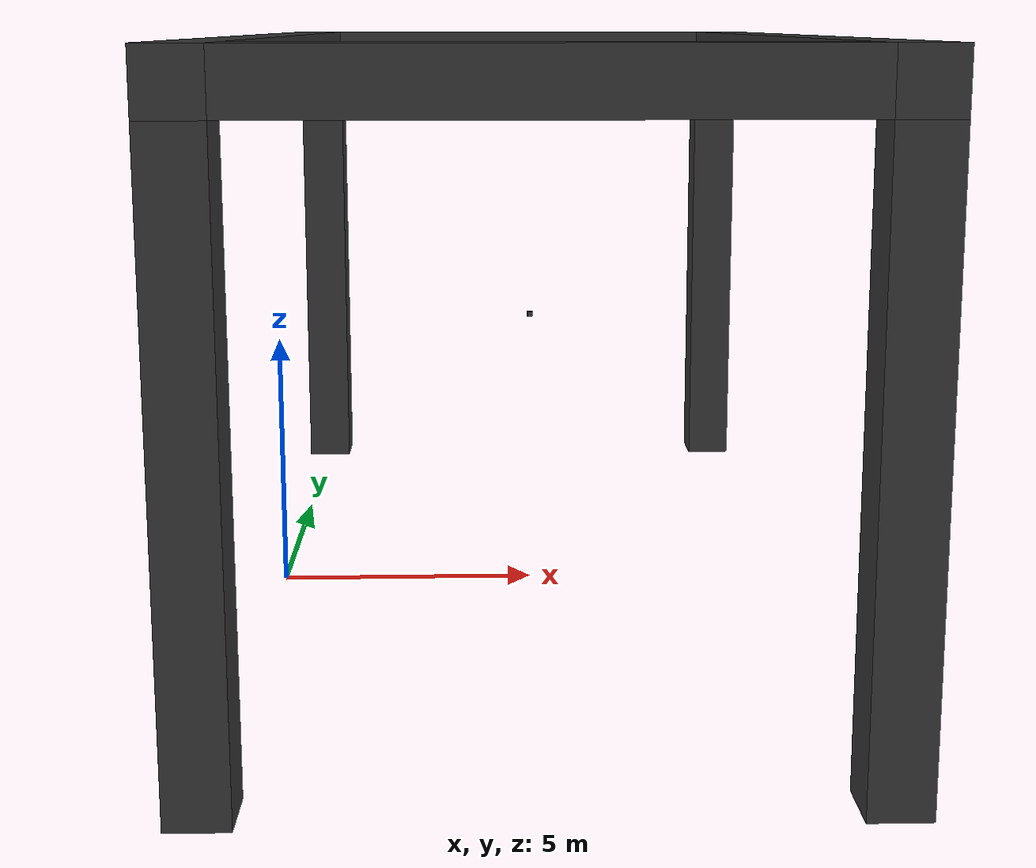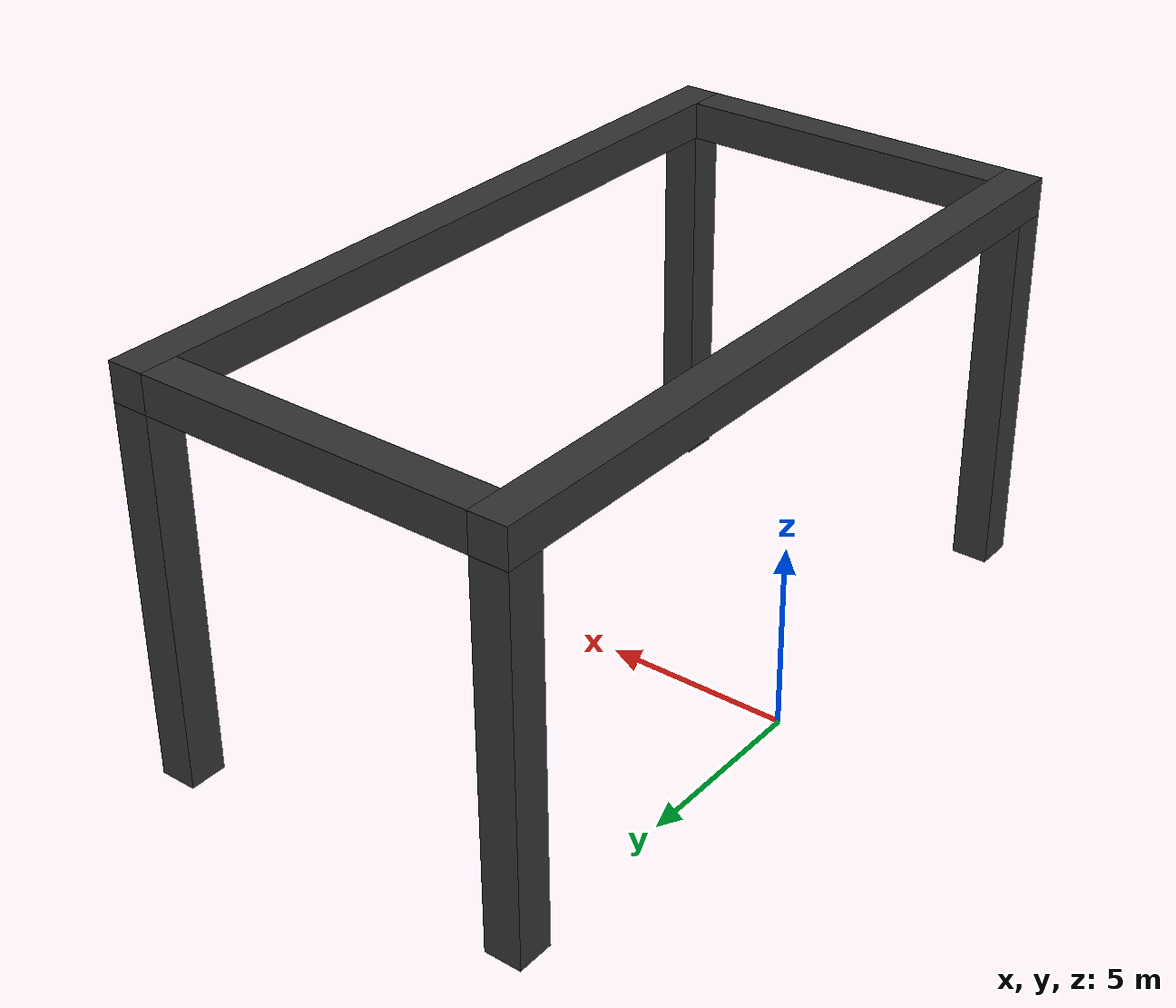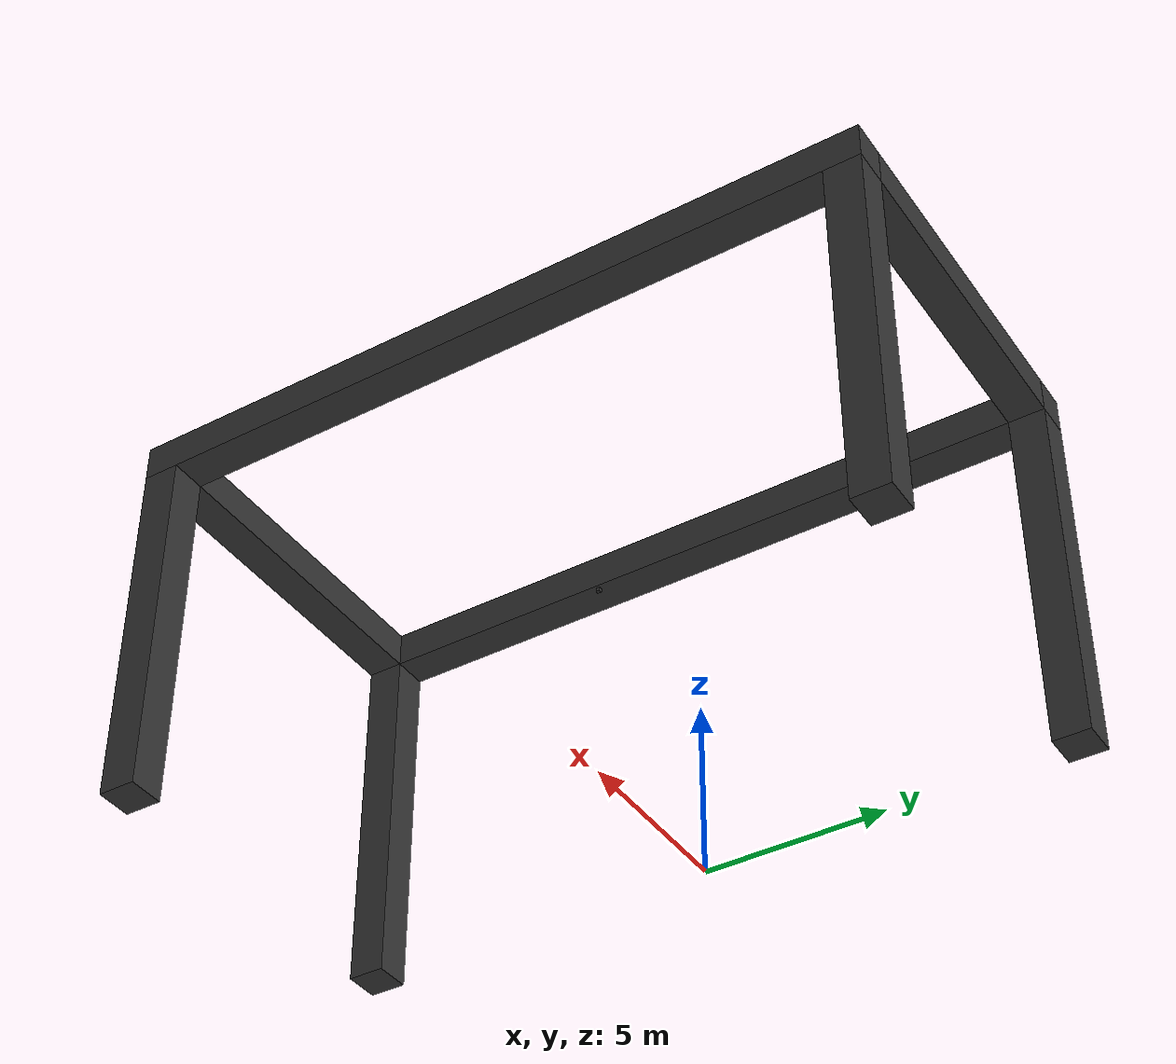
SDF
<?xml version="1.0"?>
<sdf version="1.8">
  <model name="kopnyc">
  <static>true</static>
  <!-- колоны -->
  <include>
    <uri>/home/valerii/proect_manipulator/src/gazebo/worlds/kolona/kolona.sdf</uri>
    <name>kolona1</name>
    <pose>10 10 5 0 0 0</pose>
  </include>
  <include>
    <uri>/home/valerii/proect_manipulator/src/gazebo/worlds/kolona/kolona.sdf</uri>
    <pose>0 10 5 0 0 0</pose>
    <name>kolona2</name>
  </include>
  <include>
    <uri>/home/valerii/proect_manipulator/src/gazebo/worlds/kolona/kolona.sdf</uri>
    <pose>10 -10 5 0 0 0</pose>
    <name>kolona3</name>
  </include>
  <include>
    <uri>/home/valerii/proect_manipulator/src/gazebo/worlds/kolona/kolona.sdf</uri>
    <pose>0 -10 5 0 0 0</pose>
    <name>kolona4</name>
  </include>
  <!-- балки -->
  <include>
    <uri>/home/valerii/proect_manipulator/src/gazebo/worlds/balka/balka.sdf</uri>
    <pose>10 0 10.5 0 0 0</pose>
    <name>balka1</name>
  </include>
  <include>
    <uri>/home/valerii/proect_manipulator/src/gazebo/worlds/balka/balka.sdf</uri>
    <pose>0 0 10.5 0 0 0</pose>
    <name>balka2</name>
  </include>
  <include>
    <uri>/home/valerii/proect_manipulator/src/gazebo/worlds/balka2/balka2.sdf</uri>
    <pose>5 10 10.5 0 0 0</pose>
    <name>balka3</name>
  </include>
  <include>
    <uri>/home/valerii/proect_manipulator/src/gazebo/worlds/balka2/balka2.sdf</uri>
    <pose>5 -10 10.5 0 0 0</pose>
    <name>balka4</name>
  </include>
  <!-- камера  -->
  <include>
    <uri>/home/valerii/proect_manipulator/src/gazebo/worlds/camera/camera.sdf</uri>
    <name>camera1</name>
    <pose>5 0 5.5 0 1.5708 0</pose>
  </include>
  <joint name="shtativ" type="fixed">
    <parent>camera1::kopnyc</parent>
    <child>kolona1::kolona</child>
  </joint>
  </model>
</sdf>

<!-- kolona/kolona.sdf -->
<sdf version="1.8">
  <model name="kolona">
  <pose>0 0 0 0 0 0</pose>
    <link name="kolona">

      <collision name="collision">
        <geometry>
          <box>
            <size>1 1 10</size>
          </box>
        </geometry>
      </collision>
      <visual name="visual">
        <geometry>
          <box>
            <size>1 1 10</size>
          </box>
        </geometry>
        <material>
          <ambient>0.2 0.2 0.2 1</ambient>
          <diffuse>0.2 0.2 0.2 1</diffuse>
        </material>
      </visual>
    </link>
  </model>
</sdf>

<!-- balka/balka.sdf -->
<sdf version="1.8">
  <model name="balka">
    <static>true</static>
    <link name="balka">
      <pose>0 0 0 0 0 0</pose>
      <collision name="collision">
        <geometry>
          <box>
            <size>1 21 1</size>
          </box>
        </geometry>
      </collision>
      <visual name="visual">
        <geometry>
          <box>
            <size>1 21 1</size>
          </box>
        </geometry>
        <material>
          <ambient>0.2 0.2 0.2 1</ambient>
          <diffuse>0.2 0.2 0.2 1</diffuse>
        </material>
      </visual>
    </link>
  </model>
</sdf>

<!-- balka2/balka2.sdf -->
<sdf version="1.8">
  <model name="balka">
    <static>true</static>
    <link name="balka">
      <pose>0 0 0 0 0 0</pose>
      <collision name="collision">
        <geometry>
          <box>
            <size>9 1 1</size>
          </box>
        </geometry>
      </collision>
      <visual name="visual">
        <geometry>
          <box>
            <size>9 1 1</size>
          </box>
        </geometry>
        <material>
          <ambient>0.2 0.2 0.2 1</ambient>
          <diffuse>0.2 0.2 0.2 1</diffuse>
        </material>
      </visual>
    </link>
  </model>
</sdf>

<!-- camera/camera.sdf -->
<sdf version="1.8">
    <model name="camera">
      <link name="kopnyc">
        <visual name="visual">
          <geometry><box><size>0.1 0.1 0.1</size></box></geometry>
          <material><ambient>0.2 0.2 0.2 1</ambient><diffuse>0.2 0.2 0.2 1</diffuse></material>
        </visual>
        <sensor type="camera" name="camera1">
        <update_rate>30.0</update_rate>
        <always_on>true</always_on>
        <visualize>true</visualize>

        <topic>camera/image_raw</topic>

        <camera name="camera1">
          <horizontal_fov>2.3962634</horizontal_fov>
          <image>
            <width>640</width>
            <height>480</height>
            <format>R8G8B8</format>
          </image>
          <clip>
            <near>0.2</near>
            <far>100.0</far>
          </clip>
        </camera>
      </sensor>
      </link>

    </model>
  </sdf>
